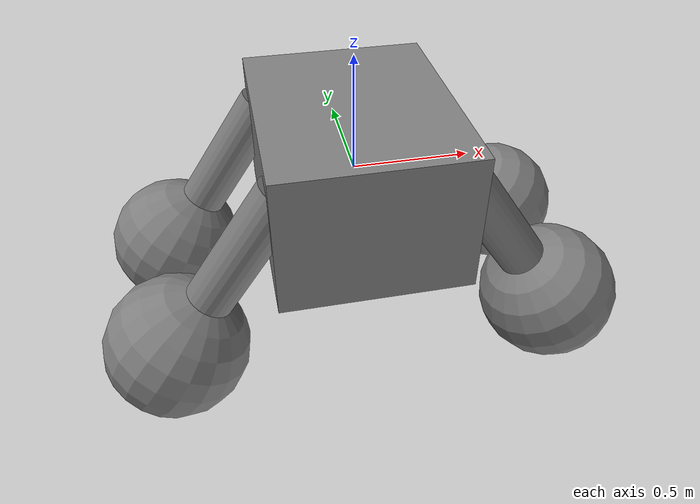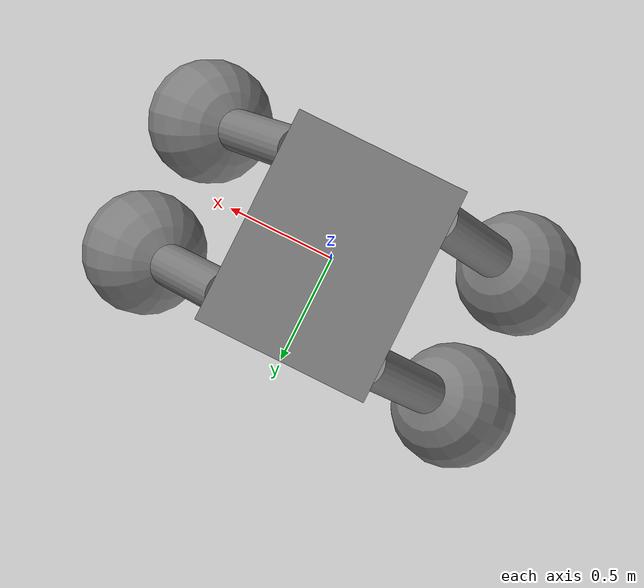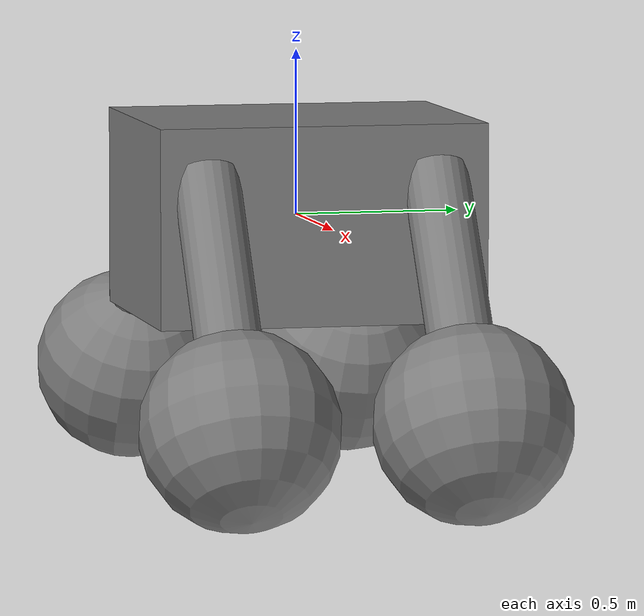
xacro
<?xml version="1.0"?>
<robot name="chico_basic" xmlns:xacro="http://ros.org/wiki/xacro">

  <material name="gray">
    <color rgba="0.5 0.5 0.5 1.0"/>
  </material>

  <link name="base_link">

    <visual>
      <geometry>
        <box size="0.8 1 0.6"/>
      </geometry>
      <material name="gray"/>
    </visual>

    <collision>
      <geometry>
        <box size="0.8 1 0.6"/>
      </geometry>
    </collision>
  <inertial>
    <origin xyz="0 0 0.3" rpy="0 0 0"/>
    <mass value="90"/>
    <inertia
      ixx="${1.0/12.0 * 90.0 * (0.8*0.8 + 0.6*0.6)}"
      iyy="${1.0/12.0 * 90.0 * (1.0*1.0 + 0.6*0.6)}"
      izz="${1.0/12.0 * 90.0 * (0.8*0.8 + 1.0*1.0)}"
      ixy="0.0"
      ixz="0.0"
      iyz="0.0"/>
  </inertial>
  </link>

    <!-- Braço frontal esquerdo -->
  <link name="arm_front_left">

    <visual>
      <geometry>
        <cylinder length="1.1" radius="0.1"/>
      </geometry>
      <material name="gray"/>
    </visual>

    <collision>
      <geometry>
        <cylinder length="1.1" radius="0.1"/>
      </geometry>
      </collision>

    <inertial>
      <origin xyz="0 0 0.55" rpy="0 0 0"/>
      <mass value="10"/>

      <!-- Tensor de inércia do cilindro -->
      <inertia
        ixx="${(1.0/12.0) * 10.0 * (3*(0.1*0.1) + 1.1*1.1)}"
        iyy="${(1.0/12.0) * 10.0 * (3*(0.1*0.1) + 1.1*1.1)}"
        izz="${(1.0/2.0) * 10.0 * (0.1*0.1)}"
        ixy="0.0"
        ixz="0.0"
        iyz="0.0"/>
    </inertial>

  </link>

  <!-- Junta do braço frontal esquerdo -->
  <joint name="joint_arm_front_left" type="fixed">
    <parent link="base_link"/>
    <child link="arm_front_left"/>
    <origin xyz="-0.65 0.35 -0.3" rpy="0 0.6 0"/>
  </joint>

  <!-- Roda frontal esquerda -->
  <link name="wheel_front_left">

    <visual>
      <geometry>
        <sphere radius="0.3"/>
      </geometry>
      <material name="gray"/>
    </visual>

    <collision>
      <geometry>
        <sphere radius="0.3"/>
      </geometry>
    </collision>

    <inertial>
      <origin xyz="0 0 0" rpy="0 0 0"/>
      <mass value="5"/>

      <!-- Tensor de inércia da esfera -->
      <inertia
          ixx="${(2.0/5.0) * 5.0 * (0.3*0.3)}"
          iyy="${(2.0/5.0) * 5.0 * (0.3*0.3)}"
          izz="${(2.0/5.0) * 5.0 * (0.3*0.3)}"
          ixy="0.0"
          ixz="0.0"
          iyz="0.0"/>
    </inertial>
  </link>

    <!-- Junta da roda frontal esquerda -->
  <joint name="joint_wheel_front_left" type="revolute">
    <parent link="arm_front_left"/>
    <child link="wheel_front_left"/>
    <origin xyz="0 0 -0.3" rpy="0 0 0" />
    <axis xyz="0 1 0"/>
    <limit effort="5.0" velocity="10.0"/>
  </joint>

  <!-- Braço frontal direito -->
  <link name="arm_front_right">

    <visual>
      <geometry>
        <cylinder length="1.1" radius="0.1"/>
      </geometry>
      <material name="gray"/>
    </visual>

    <collision>
      <geometry>
        <cylinder length="1.1" radius="0.1"/>
      </geometry>
    </collision>

    <inertial>
      <origin xyz="0 0 0.55" rpy="0 0 0"/>
      <mass value="10"/>

      <!-- Tensor de inércia do cilindro -->
      <inertia
        ixx="${(1.0/12.0) * 10.0 * (3*(0.1*0.1) + 1.1*1.1)}"
        iyy="${(1.0/12.0) * 10.0 * (3*(0.1*0.1) + 1.1*1.1)}"
        izz="${(1.0/2.0) * 10.0 * (0.1*0.1)}"
        ixy="0.0"
        ixz="0.0"
        iyz="0.0"/>
    </inertial>
  </link>

  <!-- Junta do braço frontal direito -->
  <joint name="joint_arm_front_right" type="fixed">
    <parent link="base_link"/>
    <child link="arm_front_right"/>
    <origin xyz="-0.65 -0.35 -0.3" rpy="0 0.6 0"/>
  </joint>

  <!-- Roda frontal direita -->
  <link name="wheel_front_right">

    <visual>
      <geometry>
        <sphere radius="0.3"/>
      </geometry>
      <material name="gray"/>
    </visual>

    <collision>
      <geometry>
        <sphere radius="0.3"/>
      </geometry>
    </collision>

    <inertial>
      <origin xyz="0 0 0" rpy="0 0 0"/>
      <mass value="5"/>

      <!-- Tensor de inércia da esfera -->
      <inertia
          ixx="${(2.0/5.0) * 5.0 * (0.3*0.3)}"
          iyy="${(2.0/5.0) * 5.0 * (0.3*0.3)}"
          izz="${(2.0/5.0) * 5.0 * (0.3*0.3)}"
          ixy="0.0"
          ixz="0.0"
          iyz="0.0"/>
    </inertial>

  </link>

    <!-- Junta da roda frontal direita -->
  <joint name="joint_wheel_front_right" type="revolute">
    <parent link="arm_front_right"/>
    <child link="wheel_front_right"/>
    <origin xyz="0 0 -0.3"/>
    <axis xyz="0 1 0"/>
    <limit effort="5.0" velocity="10.0"/>
  </joint>

  <!-- Braço traseiro esquerdo -->
  <link name="arm_rear_left">

    <visual>
      <geometry>
        <cylinder length="1.1" radius="0.1"/>
      </geometry>
      <material name="gray"/>
    </visual>

    <collision>
      <geometry>
        <cylinder length="1.1" radius="0.1"/>
      </geometry>
    </collision>

    <inertial>
      <origin xyz="0 0 0.55" rpy="0 0 0"/>
      <mass value="10"/>

      <!-- Tensor de inércia do cilindro -->
      <inertia
        ixx="${(1.0/12.0) * 10.0 * (3*(0.1*0.1) + 1.1*1.1)}"
        iyy="${(1.0/12.0) * 10.0 * (3*(0.1*0.1) + 1.1*1.1)}"
        izz="${(1.0/2.0) * 10.0 * (0.1*0.1)}"
        ixy="0.0"
        ixz="0.0"
        iyz="0.0"/>
    </inertial>

  </link>

  <!-- Junta do braço traseiro esquerdo -->
  <joint name="joint_arm_rear_left" type="fixed">
    <parent link="base_link"/>
    <child link="arm_rear_left"/>
    <origin xyz="0.65 0.35 -0.3" rpy="0 -0.6 0"/>
  </joint>

  <!-- Roda traseira esquerda -->
  <link name="wheel_rear_left">

    <visual>
      <geometry>
        <sphere radius="0.3"/>
      </geometry>
      <material name="gray"/>
    </visual>

    <collision>
      <geometry>
        <sphere radius="0.3"/>
      </geometry>
    </collision>

    <inertial>
      <origin xyz="0 0 0" rpy="0 0 0"/>
      <mass value="5"/>

      <!-- Tensor de inércia da esfera -->
      <inertia
          ixx="${(2.0/5.0) * 5.0 * (0.3*0.3)}"
          iyy="${(2.0/5.0) * 5.0 * (0.3*0.3)}"
          izz="${(2.0/5.0) * 5.0 * (0.3*0.3)}"
          ixy="0.0"
          ixz="0.0"
          iyz="0.0"/>
    </inertial>
  </link>

    <!-- Junta da roda traseira esquerda -->
  <joint name="joint_wheel_rear_left" type="revolute">
    <parent link="arm_rear_left"/>
    <child link="wheel_rear_left"/>
    <origin xyz="0 0 -0.3"/>
    <axis xyz="0 1 0"/>
    <limit effort="5.0" velocity="10.0"/>
  </joint>

  <!-- Braço traseiro direito -->
  <link name="arm_rear_right">
    <visual>
      <geometry>
        <cylinder length="1.1" radius="0.1"/>
      </geometry>
      <material name="gray"/>
    </visual>
    <collision>
      <geometry>
        <cylinder length="1.1" radius="0.1"/>
      </geometry>
    </collision>

 <inertial>
    <origin xyz="0 0 ${1.1/2}" rpy="0 0 0"/>
    <mass value="10"/>
    <inertia
      ixx="${(1.0/12.0) * 10.0 * (3*(0.1*0.1) + 1.1*1.1)}"
      iyy="${(1.0/12.0) * 10.0 * (3*(0.1*0.1) + 1.1*1.1)}"
      izz="${(1.0/2.0) * 10.0 * (0.1*0.1)}"
      ixy="0.0"
      ixz="0.0"
      iyz="0.0"/>
  </inertial>
  </link>

  <!-- Junta do braço traseiro direito -->
  <joint name="joint_arm_rear_right" type="fixed">
    <parent link="base_link"/>
    <child link="arm_rear_right"/>
    <origin xyz="0.65 -0.35 -0.3" rpy="0 -0.6 0"/>
  </joint>

  <!-- Roda traseira direita -->
  <link name="wheel_rear_right">

    <visual>
      <geometry>
        <sphere radius="0.3"/>
      </geometry>
      <material name="gray"/>
    </visual>

    <collision>
      <geometry>
        <sphere radius="0.3"/>
      </geometry>
    </collision>

    <inertial>
      <origin xyz="0 0 0" rpy="0 0 0"/>
      <mass value="5"/>

      <!-- Tensor de inércia da esfera -->
      <inertia
          ixx="${(2.0/5.0) * 5.0 * (0.3*0.3)}"
          iyy="${(2.0/5.0) * 5.0 * (0.3*0.3)}"
          izz="${(2.0/5.0) * 5.0 * (0.3*0.3)}"
          ixy="0.0"
          ixz="0.0"
          iyz="0.0"/>
    </inertial>

  </link>

    <!-- Junta da roda traseira direita -->
  <joint name="joint_wheel_rear_right" type="revolute">
    <parent link="arm_rear_right"/>
    <child link="wheel_rear_right"/>
    <origin xyz="0 0 -0.3"/>
    <axis xyz="0 1 0"/>
    <limit effort="5.0" velocity="10.0"/>
  </joint>

  <gazebo>
  <static>false</static>
  </gazebo>

</robot>
